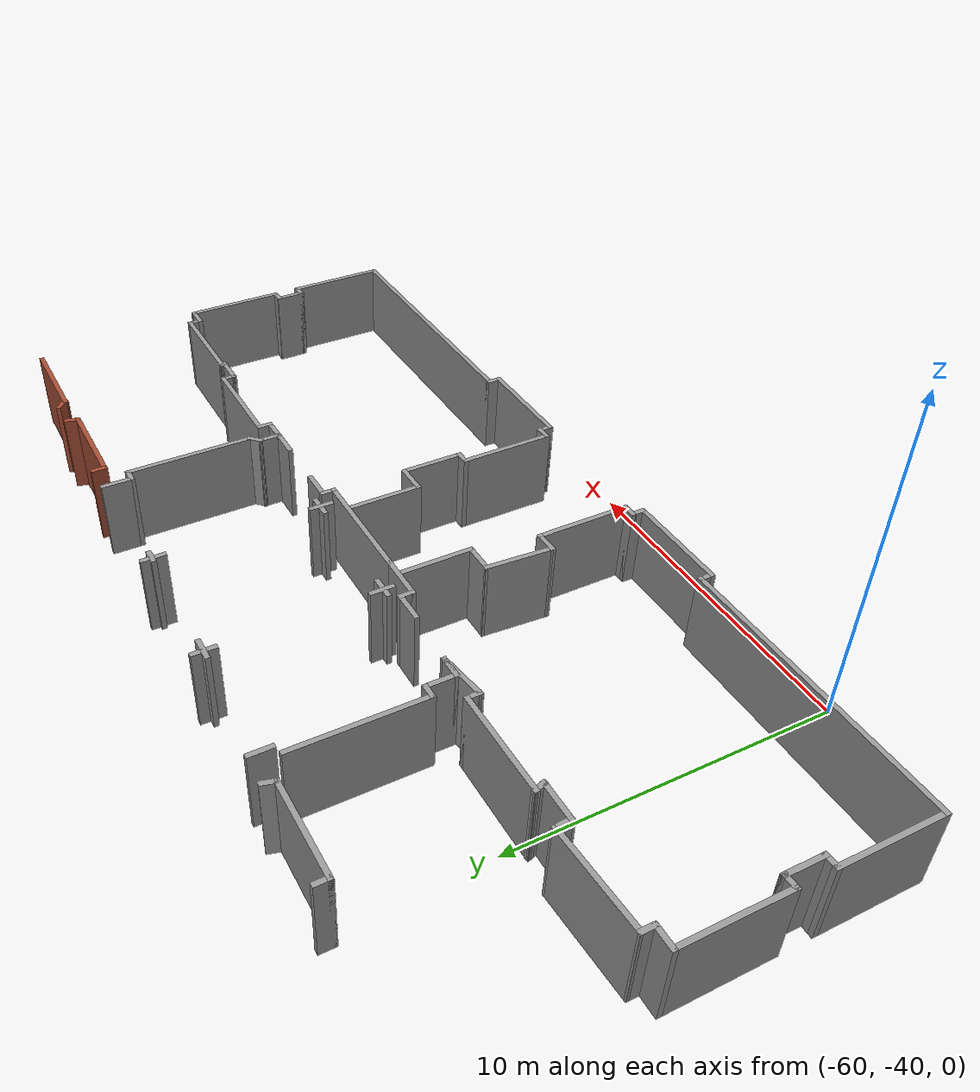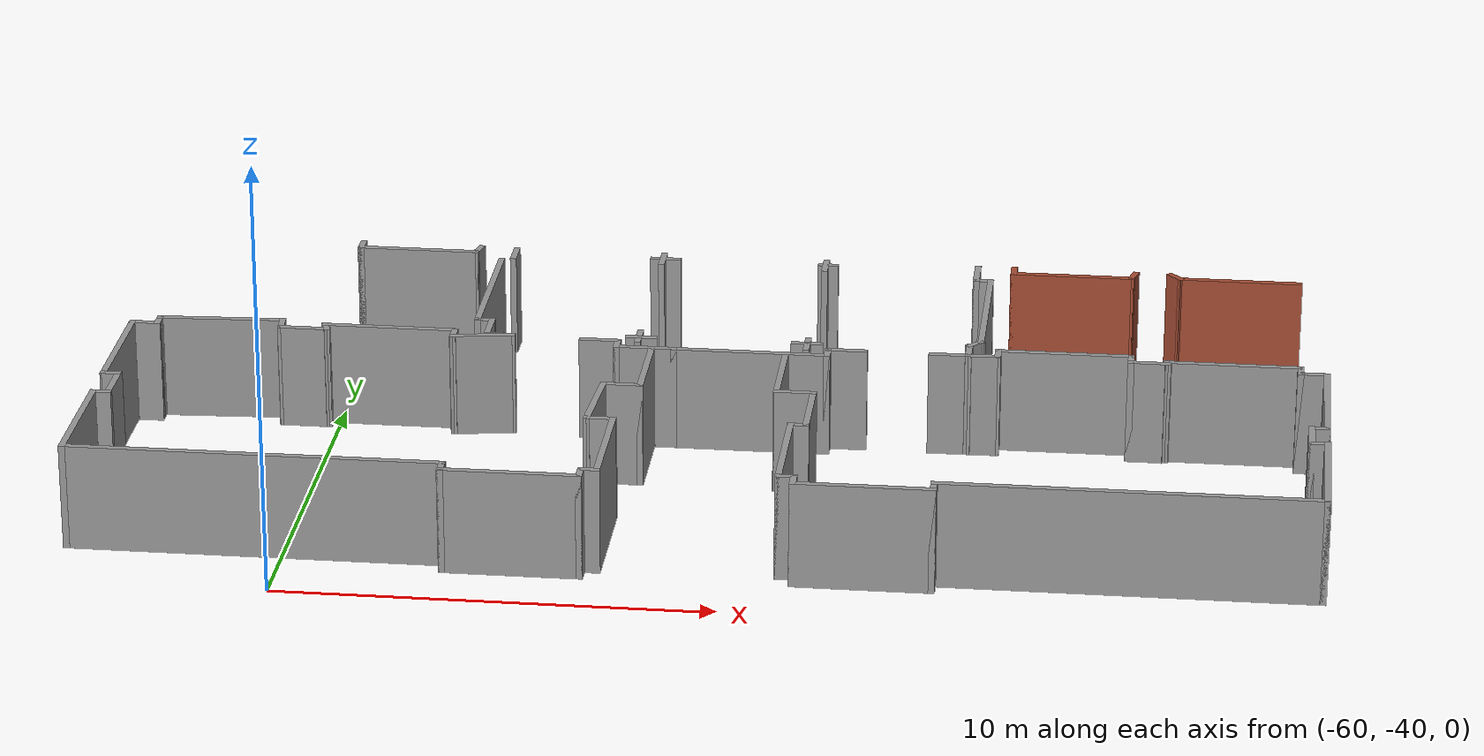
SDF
<sdf version="1.7">
 <model name="TD_1">
  <pose>-32.4963 -12.7971 0 0 -0 0</pose>
  <link name="Wall_121">
   <collision name="Wall_121_Collision">
    <geometry><box><size>0.5 0.15 2.5</size></box></geometry>
    <pose>0 0 1.25 0 -0 0</pose>
   </collision>
   <visual name="Wall_121_Visual">
    <pose>0 0 1.25 0 -0 0</pose>
    <geometry><box><size>0.5 0.15 2.5</size></box></geometry>
    <material>
     <script><uri>file://media/materials/scripts/gazebo.material</uri><name>Gazebo/Grey</name></script>
     <ambient>1 1 1 1</ambient>
    </material>
    <meta><layer>0</layer></meta>
   </visual>
   <pose>-27.8643 -12.6219 0 0 -0 -1.5708</pose>
  </link>
  <link name="Wall_122">
   <collision name="Wall_122_Collision">
    <geometry><box><size>3 0.15 2.5</size></box></geometry>
    <pose>0 0 1.25 0 -0 0</pose>
   </collision>
   <visual name="Wall_122_Visual">
    <pose>0 0 1.25 0 -0 0</pose>
    <geometry><box><size>3 0.15 2.5</size></box></geometry>
    <material>
     <script><uri>file://media/materials/scripts/gazebo.material</uri><name>Gazebo/Grey</name></script>
     <ambient>1 1 1 1</ambient>
    </material>
    <meta><layer>0</layer></meta>
   </visual>
   <pose>-26.4393 -12.7969 0 0 -0 0</pose>
  </link>
  <link name="Wall_123">
   <collision name="Wall_123_Collision">
    <geometry><box><size>0.5 0.15 2.5</size></box></geometry>
    <pose>0 0 1.25 0 -0 0</pose>
   </collision>
   <visual name="Wall_123_Visual">
    <pose>0 0 1.25 0 -0 0</pose>
    <geometry><box><size>0.5 0.15 2.5</size></box></geometry>
    <material>
     <script><uri>file://media/materials/scripts/gazebo.material</uri><name>Gazebo/Grey</name></script>
     <ambient>1 1 1 1</ambient>
    </material>
    <meta><layer>0</layer></meta>
   </visual>
   <pose>-24.969 -12.6279 0 0 -0 1.309</pose>
  </link>
  <link name="Wall_138">
   <collision name="Wall_138_Collision">
    <geometry><box><size>0.75 0.15 2.5</size></box></geometry>
    <pose>0 0 1.25 0 -0 0</pose>
   </collision>
   <visual name="Wall_138_Visual">
    <pose>0 0 1.25 0 -0 0</pose>
    <geometry><box><size>0.75 0.15 2.5</size></box></geometry>
    <material>
     <script><uri>file://media/materials/scripts/gazebo.material</uri><name>Gazebo/Grey</name></script>
     <ambient>1 1 1 1</ambient>
    </material>
    <meta><layer>0</layer></meta>
   </visual>
   <pose>-24.0418 -12.7893 0 0 -0 -1.5708</pose>
  </link>
  <link name="Wall_143">
   <collision name="Wall_143_Collision">
    <geometry><box><size>4 0.15 2.5</size></box></geometry>
    <pose>0 0 1.25 0 -0 0</pose>
   </collision>
   <visual name="Wall_143_Visual">
    <pose>0 0 1.25 0 -0 0</pose>
    <geometry><box><size>4 0.15 2.5</size></box></geometry>
    <material>
     <script><uri>file://media/materials/scripts/gazebo.material</uri><name>Gazebo/Grey</name></script>
     <ambient>1 1 1 1</ambient>
    </material>
    <meta><layer>0</layer></meta>
   </visual>
   <pose>-24.3141 -15.1704 0 0 -0 -1.5708</pose>
  </link>
  <link name="Wall_144">
   <collision name="Wall_144_Collision">
    <geometry><box><size>0.5 0.15 2.5</size></box></geometry>
    <pose>0 0 1.25 0 -0 0</pose>
   </collision>
   <visual name="Wall_144_Visual">
    <pose>0 0 1.25 0 -0 0</pose>
    <geometry><box><size>0.5 0.15 2.5</size></box></geometry>
    <material>
     <script><uri>file://media/materials/scripts/gazebo.material</uri><name>Gazebo/Grey</name></script>
     <ambient>1 1 1 1</ambient>
    </material>
    <meta><layer>0</layer></meta>
   </visual>
   <pose>-24.1391 -17.0954 0 0 -0 0</pose>
  </link>
  <link name="Wall_145">
   <collision name="Wall_145_Collision">
    <geometry><box><size>1 0.15 2.5</size></box></geometry>
    <pose>0 0 1.25 0 -0 0</pose>
   </collision>
   <visual name="Wall_145_Visual">
    <pose>0 0 1.25 0 -0 0</pose>
    <geometry><box><size>1 0.15 2.5</size></box></geometry>
    <material>
     <script><uri>file://media/materials/scripts/gazebo.material</uri><name>Gazebo/Grey</name></script>
     <ambient>1 1 1 1</ambient>
    </material>
    <meta><layer>0</layer></meta>
   </visual>
   <pose>-23.9641 -17.5204 0 0 -0 -1.5708</pose>
  </link>
  <link name="Wall_146">
   <collision name="Wall_146_Collision">
    <geometry><box><size>0.75 0.15 2.5</size></box></geometry>
    <pose>0 0 1.25 0 -0 0</pose>
   </collision>
   <visual name="Wall_146_Visual">
    <pose>0 0 1.25 0 -0 0</pose>
    <geometry><box><size>0.75 0.15 2.5</size></box></geometry>
    <material>
     <script><uri>file://media/materials/scripts/gazebo.material</uri><name>Gazebo/Grey</name></script>
     <ambient>1 1 1 1</ambient>
    </material>
    <meta><layer>0</layer></meta>
   </visual>
   <pose>-23.6641 -17.9454 0 0 -0 0</pose>
  </link>
  <link name="Wall_148">
   <collision name="Wall_148_Collision">
    <geometry><box><size>1 0.15 2.5</size></box></geometry>
    <pose>0 0 1.25 0 -0 0</pose>
   </collision>
   <visual name="Wall_148_Visual">
    <pose>0 0 1.25 0 -0 0</pose>
    <geometry><box><size>1 0.15 2.5</size></box></geometry>
    <material>
     <script><uri>file://media/materials/scripts/gazebo.material</uri><name>Gazebo/Grey</name></script>
     <ambient>1 1 1 1</ambient>
    </material>
    <meta><layer>0</layer></meta>
   </visual>
   <pose>-21.2577 -18.0243 0 0 -0 0</pose>
  </link>
  <link name="Wall_149">
   <collision name="Wall_149_Collision">
    <geometry><box><size>0.5 0.15 2.5</size></box></geometry>
    <pose>0 0 1.25 0 -0 0</pose>
   </collision>
   <visual name="Wall_149_Visual">
    <pose>0 0 1.25 0 -0 0</pose>
    <geometry><box><size>0.5 0.15 2.5</size></box></geometry>
    <material>
     <script><uri>file://media/materials/scripts/gazebo.material</uri><name>Gazebo/Grey</name></script>
     <ambient>1 1 1 1</ambient>
    </material>
    <meta><layer>0</layer></meta>
   </visual>
   <pose>-20.8327 -18.1993 0 0 -0 -1.5708</pose>
  </link>
  <link name="Wall_150">
   <collision name="Wall_150_Collision">
    <geometry><box><size>1.5 0.15 2.5</size></box></geometry>
    <pose>0 0 1.25 0 -0 0</pose>
   </collision>
   <visual name="Wall_150_Visual">
    <pose>0 0 1.25 0 -0 0</pose>
    <geometry><box><size>1.5 0.15 2.5</size></box></geometry>
    <material>
     <script><uri>file://media/materials/scripts/gazebo.material</uri><name>Gazebo/Grey</name></script>
     <ambient>1 1 1 1</ambient>
    </material>
    <meta><layer>0</layer></meta>
   </visual>
   <pose>-20.1577 -18.3743 0 0 -0 0</pose>
  </link>
  <link name="Wall_151">
   <collision name="Wall_151_Collision">
    <geometry><box><size>3.75 0.15 2.5</size></box></geometry>
    <pose>0 0 1.25 0 -0 0</pose>
   </collision>
   <visual name="Wall_151_Visual">
    <pose>0 0 1.25 0 -0 0</pose>
    <geometry><box><size>3.75 0.15 2.5</size></box></geometry>
    <material>
     <script><uri>file://media/materials/scripts/gazebo.material</uri><name>Gazebo/Grey</name></script>
     <ambient>1 1 1 1</ambient>
    </material>
    <meta><layer>0</layer></meta>
   </visual>
   <pose>-17.6827 -18.3743 0 0 -0 0</pose>
  </link>
  <link name="Wall_152">
   <collision name="Wall_152_Collision">
    <geometry><box><size>0.5 0.15 2.5</size></box></geometry>
    <pose>0 0 1.25 0 -0 0</pose>
   </collision>
   <visual name="Wall_152_Visual">
    <pose>0 0 1.25 0 -0 0</pose>
    <geometry><box><size>0.5 0.15 2.5</size></box></geometry>
    <material>
     <script><uri>file://media/materials/scripts/gazebo.material</uri><name>Gazebo/Grey</name></script>
     <ambient>1 1 1 1</ambient>
    </material>
    <meta><layer>0</layer></meta>
   </visual>
   <pose>-15.8827 -18.1993 0 0 -0 1.5708</pose>
  </link>
  <link name="Wall_153">
   <collision name="Wall_153_Collision">
    <geometry><box><size>1 0.15 2.5</size></box></geometry>
    <pose>0 0 1.25 0 -0 0</pose>
   </collision>
   <visual name="Wall_153_Visual">
    <pose>0 0 1.25 0 -0 0</pose>
    <geometry><box><size>1 0.15 2.5</size></box></geometry>
    <material>
     <script><uri>file://media/materials/scripts/gazebo.material</uri><name>Gazebo/Grey</name></script>
     <ambient>1 1 1 1</ambient>
    </material>
    <meta><layer>0</layer></meta>
   </visual>
   <pose>-15.4577 -18.0243 0 0 -0 0</pose>
  </link>
  <link name="Wall_155">
   <collision name="Wall_155_Collision">
    <geometry><box><size>1 0.15 2.5</size></box></geometry>
    <pose>0 0 1.25 0 -0 0</pose>
   </collision>
   <visual name="Wall_155_Visual">
    <pose>0 0 1.25 0 -0 0</pose>
    <geometry><box><size>1 0.15 2.5</size></box></geometry>
    <material>
     <script><uri>file://media/materials/scripts/gazebo.material</uri><name>Gazebo/Grey</name></script>
     <ambient>1 1 1 1</ambient>
    </material>
    <meta><layer>0</layer></meta>
   </visual>
   <pose>-13.0308 -18.0243 0 0 -0 0</pose>
  </link>
  <link name="Wall_156">
   <collision name="Wall_156_Collision">
    <geometry><box><size>0.75 0.15 2.5</size></box></geometry>
    <pose>0 0 1.25 0 -0 0</pose>
   </collision>
   <visual name="Wall_156_Visual">
    <pose>0 0 1.25 0 -0 0</pose>
    <geometry><box><size>0.75 0.15 2.5</size></box></geometry>
    <material>
     <script><uri>file://media/materials/scripts/gazebo.material</uri><name>Gazebo/Grey</name></script>
     <ambient>1 1 1 1</ambient>
    </material>
    <meta><layer>0</layer></meta>
   </visual>
   <pose>-12.6058 -17.7243 0 0 -0 1.5708</pose>
  </link>
  <link name="Wall_157">
   <collision name="Wall_157_Collision">
    <geometry><box><size>0.5 0.15 2.5</size></box></geometry>
    <pose>0 0 1.25 0 -0 0</pose>
   </collision>
   <visual name="Wall_157_Visual">
    <pose>0 0 1.25 0 -0 0</pose>
    <geometry><box><size>0.5 0.15 2.5</size></box></geometry>
    <material>
     <script><uri>file://media/materials/scripts/gazebo.material</uri><name>Gazebo/Grey</name></script>
     <ambient>1 1 1 1</ambient>
    </material>
    <meta><layer>0</layer></meta>
   </visual>
   <pose>-12.4821 -17.3005 0 0 -0 0.785398</pose>
  </link>
  <link name="Wall_158">
   <collision name="Wall_158_Collision">
    <geometry><box><size>4 0.15 2.5</size></box></geometry>
    <pose>0 0 1.25 0 -0 0</pose>
   </collision>
   <visual name="Wall_158_Visual">
    <pose>0 0 1.25 0 -0 0</pose>
    <geometry><box><size>4 0.15 2.5</size></box></geometry>
    <material>
     <script><uri>file://media/materials/scripts/gazebo.material</uri><name>Gazebo/Grey</name></script>
     <ambient>1 1 1 1</ambient>
    </material>
    <meta><layer>0</layer></meta>
   </visual>
   <pose>-12.3583 -15.2518 0 0 -0 1.5708</pose>
  </link>
  <link name="Wall_159">
   <collision name="Wall_159_Collision">
    <geometry><box><size>0.5 0.15 2.5</size></box></geometry>
    <pose>0 0 1.25 0 -0 0</pose>
   </collision>
   <visual name="Wall_159_Visual">
    <pose>0 0 1.25 0 -0 0</pose>
    <geometry><box><size>0.5 0.15 2.5</size></box></geometry>
    <material>
     <script><uri>file://media/materials/scripts/gazebo.material</uri><name>Gazebo/Grey</name></script>
     <ambient>1 1 1 1</ambient>
    </material>
    <meta><layer>0</layer></meta>
   </visual>
   <pose>-12.5333 -13.3268 0 0 -0 3.14159</pose>
  </link>
  <link name="Wall_160">
   <collision name="Wall_160_Collision">
    <geometry><box><size>1 0.15 2.5</size></box></geometry>
    <pose>0 0 1.25 0 -0 0</pose>
   </collision>
   <visual name="Wall_160_Visual">
    <pose>0 0 1.25 0 -0 0</pose>
    <geometry><box><size>1 0.15 2.5</size></box></geometry>
    <material>
     <script><uri>file://media/materials/scripts/gazebo.material</uri><name>Gazebo/Grey</name></script>
     <ambient>1 1 1 1</ambient>
    </material>
    <meta><layer>0</layer></meta>
   </visual>
   <pose>-12.7083 -12.9018 0 0 -0 1.5708</pose>
  </link>
  <link name="Wall_162">
   <collision name="Wall_162_Collision">
    <geometry><box><size>3.25 0.15 2.5</size></box></geometry>
    <pose>0 0 1.25 0 -0 0</pose>
   </collision>
   <visual name="Wall_162_Visual">
    <pose>0 0 1.25 0 -0 0</pose>
    <geometry><box><size>3.25 0.15 2.5</size></box></geometry>
    <material>
     <script><uri>file://media/materials/scripts/gazebo.material</uri><name>Gazebo/Grey</name></script>
     <ambient>1 1 1 1</ambient>
    </material>
    <meta><layer>0</layer></meta>
   </visual>
   <pose>-26.2939 -17.8048 0 0 -0 0</pose>
  </link>
  <link name="Wall_163">
   <collision name="Wall_163_Collision">
    <geometry><box><size>0.5 0.15 2.5</size></box></geometry>
    <pose>0 0 1.25 0 -0 0</pose>
   </collision>
   <visual name="Wall_163_Visual">
    <pose>0 0 1.25 0 -0 0</pose>
    <geometry><box><size>0.5 0.15 2.5</size></box></geometry>
    <material>
     <script><uri>file://media/materials/scripts/gazebo.material</uri><name>Gazebo/Grey</name></script>
     <ambient>1 1 1 1</ambient>
    </material>
    <meta><layer>0</layer></meta>
   </visual>
   <pose>-24.7439 -17.9798 0 0 -0 -1.5708</pose>
  </link>
  <link name="Wall_164">
   <collision name="Wall_164_Collision">
    <geometry><box><size>1.5456 0.15 2.5</size></box></geometry>
    <pose>0 0 1.25 0 -0 0</pose>
   </collision>
   <visual name="Wall_164_Visual">
    <pose>0 0 1.25 0 -0 0</pose>
    <geometry><box><size>1.5456 0.15 2.5</size></box></geometry>
    <material>
     <script><uri>file://media/materials/scripts/gazebo.material</uri><name>Gazebo/Grey</name></script>
     <ambient>1 1 1 1</ambient>
    </material>
    <meta><layer>0</layer></meta>
   </visual>
   <pose>-24.054 -18.0501 0 0 -0 0.150582</pose>
  </link>
  <link name="Wall_166">
   <collision name="Wall_166_Collision">
    <geometry><box><size>1.25 0.15 2.5</size></box></geometry>
    <pose>0 0 1.25 0 -0 0</pose>
   </collision>
   <visual name="Wall_166_Visual">
    <pose>0 0 1.25 0 -0 0</pose>
    <geometry><box><size>1.25 0.15 2.5</size></box></geometry>
    <material>
     <script><uri>file://media/materials/scripts/gazebo.material</uri><name>Gazebo/Grey</name></script>
     <ambient>1 1 1 1</ambient>
    </material>
    <meta><layer>0</layer></meta>
   </visual>
   <pose>-28.3142 -18.0728 0 0 -0 0</pose>
  </link>
  <link name="Wall_167">
   <collision name="Wall_167_Collision">
    <geometry><box><size>0.429643 0.15 2.5</size></box></geometry>
    <pose>0 0 1.25 0 -0 0</pose>
   </collision>
   <visual name="Wall_167_Visual">
    <pose>0 0 1.25 0 -0 0</pose>
    <geometry><box><size>0.429643 0.15 2.5</size></box></geometry>
    <material>
     <script><uri>file://media/materials/scripts/gazebo.material</uri><name>Gazebo/Grey</name></script>
     <ambient>1 1 1 1</ambient>
    </material>
    <meta><layer>0</layer></meta>
   </visual>
   <pose>-27.804 -17.9388 0 0 -0 1.85983</pose>
  </link>
  <link name="Wall_169">
   <collision name="Wall_169_Collision">
    <geometry><box><size>0.583709 0.15 2.5</size></box></geometry>
    <pose>0 0 1.25 0 -0 0</pose>
   </collision>
   <visual name="Wall_169_Visual">
    <pose>0 0 1.25 0 -0 0</pose>
    <geometry><box><size>0.583709 0.15 2.5</size></box></geometry>
    <material>
     <script><uri>file://media/materials/scripts/gazebo.material</uri><name>Gazebo/Grey</name></script>
     <ambient>1 1 1 1</ambient>
    </material>
    <meta><layer>0</layer></meta>
   </visual>
   <pose>-28.8814 -17.8567 0 0 -0 -1.49097</pose>
  </link>
  <link name="Wall_171">
   <collision name="Wall_171_Collision">
    <geometry><box><size>3.07623 0.15 2.5</size></box></geometry>
    <pose>0 0 1.25 0 -0 0</pose>
   </collision>
   <visual name="Wall_171_Visual">
    <pose>0 0 1.25 0 -0 0</pose>
    <geometry><box><size>3.07623 0.15 2.5</size></box></geometry>
    <material>
     <script><uri>file://media/materials/scripts/gazebo.material</uri><name>Gazebo/Grey</name></script>
     <ambient>1 1 1 1</ambient>
    </material>
    <meta><layer>0</layer></meta>
   </visual>
   <pose>-30.36 -17.714 0 0 -0 0.050254</pose>
  </link>
  <link name="Wall_173">
   <collision name="Wall_173_Collision">
    <geometry><box><size>0.5 0.15 2.5</size></box></geometry>
    <pose>0 0 1.25 0 -0 0</pose>
   </collision>
   <visual name="Wall_173_Visual">
    <pose>0 0 1.25 0 -0 0</pose>
    <geometry><box><size>0.5 0.15 2.5</size></box></geometry>
    <material>
     <script><uri>file://media/materials/scripts/gazebo.material</uri><name>Gazebo/Grey</name></script>
     <ambient>1 1 1 1</ambient>
    </material>
    <meta><layer>0</layer></meta>
   </visual>
   <pose>-31.8213 -17.9625 0 0 -0 -1.5708</pose>
  </link>
  <link name="Wall_174">
   <collision name="Wall_174_Collision">
    <geometry><box><size>0.75 0.15 2.5</size></box></geometry>
    <pose>0 0 1.25 0 -0 0</pose>
   </collision>
   <visual name="Wall_174_Visual">
    <pose>0 0 1.25 0 -0 0</pose>
    <geometry><box><size>0.75 0.15 2.5</size></box></geometry>
    <material>
     <script><uri>file://media/materials/scripts/gazebo.material</uri><name>Gazebo/Grey</name></script>
     <ambient>1 1 1 1</ambient>
    </material>
    <meta><layer>0</layer></meta>
   </visual>
   <pose>-32.1213 -18.1375 0 0 -0 3.14159</pose>
  </link>
  <link name="Wall_176">
   <collision name="Wall_176_Collision">
    <geometry><box><size>3.25 0.15 2.5</size></box></geometry>
    <pose>0 0 1.25 0 -0 0</pose>
   </collision>
   <visual name="Wall_176_Visual">
    <pose>0 0 1.25 0 -0 0</pose>
    <geometry><box><size>3.25 0.15 2.5</size></box></geometry>
    <material>
     <script><uri>file://media/materials/scripts/gazebo.material</uri><name>Gazebo/Grey</name></script>
     <ambient>1 1 1 1</ambient>
    </material>
    <meta><layer>0</layer></meta>
   </visual>
   <pose>-32.4213 -19.6875 0 0 -0 -1.5708</pose>
  </link>
  <link name="Wall_177">
   <collision name="Wall_177_Collision">
    <geometry><box><size>0.5 0.15 2.5</size></box></geometry>
    <pose>0 0 1.25 0 -0 0</pose>
   </collision>
   <visual name="Wall_177_Visual">
    <pose>0 0 1.25 0 -0 0</pose>
    <geometry><box><size>0.5 0.15 2.5</size></box></geometry>
    <material>
     <script><uri>file://media/materials/scripts/gazebo.material</uri><name>Gazebo/Grey</name></script>
     <ambient>1 1 1 1</ambient>
    </material>
    <meta><layer>0</layer></meta>
   </visual>
   <pose>-32.2463 -21.2375 0 0 -0 0</pose>
  </link>
  <link name="Wall_178">
   <collision name="Wall_178_Collision">
    <geometry><box><size>1.25 0.15 2.5</size></box></geometry>
    <pose>0 0 1.25 0 -0 0</pose>
   </collision>
   <visual name="Wall_178_Visual">
    <pose>0 0 1.25 0 -0 0</pose>
    <geometry><box><size>1.25 0.15 2.5</size></box></geometry>
    <material>
     <script><uri>file://media/materials/scripts/gazebo.material</uri><name>Gazebo/Grey</name></script>
     <ambient>1 1 1 1</ambient>
    </material>
    <meta><layer>0</layer></meta>
   </visual>
   <pose>-32.0713 -21.7875 0 0 -0 -1.5708</pose>
  </link>
  <link name="Wall_179">
   <collision name="Wall_179_Collision">
    <geometry><box><size>0.5 0.15 2.5</size></box></geometry>
    <pose>0 0 1.25 0 -0 0</pose>
   </collision>
   <visual name="Wall_179_Visual">
    <pose>0 0 1.25 0 -0 0</pose>
    <geometry><box><size>0.5 0.15 2.5</size></box></geometry>
    <material>
     <script><uri>file://media/materials/scripts/gazebo.material</uri><name>Gazebo/Grey</name></script>
     <ambient>1 1 1 1</ambient>
    </material>
    <meta><layer>0</layer></meta>
   </visual>
   <pose>-32.2463 -22.3375 0 0 -0 3.14159</pose>
  </link>
  <link name="Wall_181">
   <collision name="Wall_181_Collision">
    <geometry><box><size>3.25 0.15 2.5</size></box></geometry>
    <pose>0 0 1.25 0 -0 0</pose>
   </collision>
   <visual name="Wall_181_Visual">
    <pose>0 0 1.25 0 -0 0</pose>
    <geometry><box><size>3.25 0.15 2.5</size></box></geometry>
    <material>
     <script><uri>file://media/materials/scripts/gazebo.material</uri><name>Gazebo/Grey</name></script>
     <ambient>1 1 1 1</ambient>
    </material>
    <meta><layer>0</layer></meta>
   </visual>
   <pose>-32.4213 -23.8875 0 0 -0 -1.5708</pose>
  </link>
  <link name="Wall_182">
   <collision name="Wall_182_Collision">
    <geometry><box><size>8.75 0.15 2.5</size></box></geometry>
    <pose>0 0 1.25 0 -0 0</pose>
   </collision>
   <visual name="Wall_182_Visual">
    <pose>0 0 1.25 0 -0 0</pose>
    <geometry><box><size>8.75 0.15 2.5</size></box></geometry>
    <material>
     <script><uri>file://media/materials/scripts/gazebo.material</uri><name>Gazebo/Grey</name></script>
     <ambient>1 1 1 1</ambient>
    </material>
    <meta><layer>0</layer></meta>
   </visual>
   <pose>-28.1213 -25.4375 0 0 -0 0</pose>
  </link>
  <link name="Wall_183">
   <collision name="Wall_183_Collision">
    <geometry><box><size>0.5 0.15 2.5</size></box></geometry>
    <pose>0 0 1.25 0 -0 0</pose>
   </collision>
   <visual name="Wall_183_Visual">
    <pose>0 0 1.25 0 -0 0</pose>
    <geometry><box><size>0.5 0.15 2.5</size></box></geometry>
    <material>
     <script><uri>file://media/materials/scripts/gazebo.material</uri><name>Gazebo/Grey</name></script>
     <ambient>1 1 1 1</ambient>
    </material>
    <meta><layer>0</layer></meta>
   </visual>
   <pose>-23.8213 -25.6125 0 0 -0 -1.5708</pose>
  </link>
  <link name="Wall_184">
   <collision name="Wall_184_Collision">
    <geometry><box><size>3.25 0.15 2.5</size></box></geometry>
    <pose>0 0 1.25 0 -0 0</pose>
   </collision>
   <visual name="Wall_184_Visual">
    <pose>0 0 1.25 0 -0 0</pose>
    <geometry><box><size>3.25 0.15 2.5</size></box></geometry>
    <material>
     <script><uri>file://media/materials/scripts/gazebo.material</uri><name>Gazebo/Grey</name></script>
     <ambient>1 1 1 1</ambient>
    </material>
    <meta><layer>0</layer></meta>
   </visual>
   <pose>-22.2713 -25.7875 0 0 -0 0</pose>
  </link>
  <link name="Wall_185">
   <collision name="Wall_185_Collision">
    <geometry><box><size>0.5 0.15 2.5</size></box></geometry>
    <pose>0 0 1.25 0 -0 0</pose>
   </collision>
   <visual name="Wall_185_Visual">
    <pose>0 0 1.25 0 -0 0</pose>
    <geometry><box><size>0.5 0.15 2.5</size></box></geometry>
    <material>
     <script><uri>file://media/materials/scripts/gazebo.material</uri><name>Gazebo/Grey</name></script>
     <ambient>1 1 1 1</ambient>
    </material>
    <meta><layer>0</layer></meta>
   </visual>
   <pose>-20.7213 -25.6125 0 0 -0 1.5708</pose>
  </link>
  <link name="Wall_186">
   <collision name="Wall_186_Collision">
    <geometry><box><size>0.5 0.15 2.5</size></box></geometry>
    <pose>0 0 1.25 0 -0 0</pose>
   </collision>
   <visual name="Wall_186_Visual">
    <pose>0 0 1.25 0 -0 0</pose>
    <geometry><box><size>0.5 0.15 2.5</size></box></geometry>
    <material>
     <script><uri>file://media/materials/scripts/gazebo.material</uri><name>Gazebo/Grey</name></script>
     <ambient>1 1 1 1</ambient>
    </material>
    <meta><layer>0</layer></meta>
   </visual>
   <pose>-20.5463 -25.4375 0 0 -0 0</pose>
  </link>
  <link name="Wall_187">
   <collision name="Wall_187_Collision">
    <geometry><box><size>3 0.15 2.5</size></box></geometry>
    <pose>0 0 1.25 0 -0 0</pose>
   </collision>
   <visual name="Wall_187_Visual">
    <pose>0 0 1.25 0 -0 0</pose>
    <geometry><box><size>3 0.15 2.5</size></box></geometry>
    <material>
     <script><uri>file://media/materials/scripts/gazebo.material</uri><name>Gazebo/Grey</name></script>
     <ambient>1 1 1 1</ambient>
    </material>
    <meta><layer>0</layer></meta>
   </visual>
   <pose>-20.3713 -24.0125 0 0 -0 1.5708</pose>
  </link>
  <link name="Wall_188">
   <collision name="Wall_188_Collision">
    <geometry><box><size>0.75 0.15 2.5</size></box></geometry>
    <pose>0 0 1.25 0 -0 0</pose>
   </collision>
   <visual name="Wall_188_Visual">
    <pose>0 0 1.25 0 -0 0</pose>
    <geometry><box><size>0.75 0.15 2.5</size></box></geometry>
    <material>
     <script><uri>file://media/materials/scripts/gazebo.material</uri><name>Gazebo/Grey</name></script>
     <ambient>1 1 1 1</ambient>
    </material>
    <meta><layer>0</layer></meta>
   </visual>
   <pose>-20.6713 -22.5875 0 0 -0 3.14159</pose>
  </link>
  <link name="Wall_190">
   <collision name="Wall_190_Collision">
    <geometry><box><size>2.14035 0.15 2.5</size></box></geometry>
    <pose>0 0 1.25 0 -0 0</pose>
   </collision>
   <visual name="Wall_190_Visual">
    <pose>0 0 1.25 0 -0 0</pose>
    <geometry><box><size>2.14035 0.15 2.5</size></box></geometry>
    <material>
     <script><uri>file://media/materials/scripts/gazebo.material</uri><name>Gazebo/Grey</name></script>
     <ambient>1 1 1 1</ambient>
    </material>
    <meta><layer>0</layer></meta>
   </visual>
   <pose>-20.9095 -21.5943 0 0 -0 -1.63295</pose>
  </link>
  <link name="Wall_192">
   <collision name="Wall_192_Collision">
    <geometry><box><size>1 0.15 2.5</size></box></geometry>
    <pose>0 0 1.25 0 -0 0</pose>
   </collision>
   <visual name="Wall_192_Visual">
    <pose>0 0 1.25 0 -0 0</pose>
    <geometry><box><size>1 0.15 2.5</size></box></geometry>
    <material>
     <script><uri>file://media/materials/scripts/gazebo.material</uri><name>Gazebo/Grey</name></script>
     <ambient>1 1 1 1</ambient>
    </material>
    <meta><layer>0</layer></meta>
   </visual>
   <pose>-20.4227 -20.601 0 0 -0 0</pose>
  </link>
  <link name="Wall_193">
   <collision name="Wall_193_Collision">
    <geometry><box><size>2.25 0.15 2.5</size></box></geometry>
    <pose>0 0 1.25 0 -0 0</pose>
   </collision>
   <visual name="Wall_193_Visual">
    <pose>0 0 1.25 0 -0 0</pose>
    <geometry><box><size>2.25 0.15 2.5</size></box></geometry>
    <material>
     <script><uri>file://media/materials/scripts/gazebo.material</uri><name>Gazebo/Grey</name></script>
     <ambient>1 1 1 1</ambient>
    </material>
    <meta><layer>0</layer></meta>
   </visual>
   <pose>-19.9977 -19.551 0 0 -0 1.5708</pose>
  </link>
  <link name="Wall_195">
   <collision name="Wall_195_Collision">
    <geometry><box><size>2.25 0.15 2.5</size></box></geometry>
    <pose>0 0 1.25 0 -0 0</pose>
   </collision>
   <visual name="Wall_195_Visual">
    <pose>0 0 1.25 0 -0 0</pose>
    <geometry><box><size>2.25 0.15 2.5</size></box></geometry>
    <material>
     <script><uri>file://media/materials/scripts/gazebo.material</uri><name>Gazebo/Grey</name></script>
     <ambient>1 1 1 1</ambient>
    </material>
    <meta><layer>0</layer></meta>
   </visual>
   <pose>-16.8477 -19.564 0 0 -0 -1.5708</pose>
  </link>
  <link name="Wall_196">
   <collision name="Wall_196_Collision">
    <geometry><box><size>1 0.15 2.5</size></box></geometry>
    <pose>0 0 1.25 0 -0 0</pose>
   </collision>
   <visual name="Wall_196_Visual">
    <pose>0 0 1.25 0 -0 0</pose>
    <geometry><box><size>1 0.15 2.5</size></box></geometry>
    <material>
     <script><uri>file://media/materials/scripts/gazebo.material</uri><name>Gazebo/Grey</name></script>
     <ambient>1 1 1 1</ambient>
    </material>
    <meta><layer>0</layer></meta>
   </visual>
   <pose>-16.4227 -20.614 0 0 -0 0</pose>
  </link>
  <link name="Wall_197">
   <collision name="Wall_197_Collision">
    <geometry><box><size>2 0.15 2.5</size></box></geometry>
    <pose>0 0 1.25 0 -0 0</pose>
   </collision>
   <visual name="Wall_197_Visual">
    <pose>0 0 1.25 0 -0 0</pose>
    <geometry><box><size>2 0.15 2.5</size></box></geometry>
    <material>
     <script><uri>file://media/materials/scripts/gazebo.material</uri><name>Gazebo/Grey</name></script>
     <ambient>1 1 1 1</ambient>
    </material>
    <meta><layer>0</layer></meta>
   </visual>
   <pose>-15.9977 -21.539 0 0 -0 -1.5708</pose>
  </link>
  <link name="Wall_198">
   <collision name="Wall_198_Collision">
    <geometry><box><size>0.5 0.15 2.5</size></box></geometry>
    <pose>0 0 1.25 0 -0 0</pose>
   </collision>
   <visual name="Wall_198_Visual">
    <pose>0 0 1.25 0 -0 0</pose>
    <geometry><box><size>0.5 0.15 2.5</size></box></geometry>
    <material>
     <script><uri>file://media/materials/scripts/gazebo.material</uri><name>Gazebo/Grey</name></script>
     <ambient>1 1 1 1</ambient>
    </material>
    <meta><layer>0</layer></meta>
   </visual>
   <pose>-16.1727 -22.464 0 0 -0 3.14159</pose>
  </link>
  <link name="Wall_200">
   <collision name="Wall_200_Collision">
    <geometry><box><size>3 0.15 2.5</size></box></geometry>
    <pose>0 0 1.25 0 -0 0</pose>
   </collision>
   <visual name="Wall_200_Visual">
    <pose>0 0 1.25 0 -0 0</pose>
    <geometry><box><size>3 0.15 2.5</size></box></geometry>
    <material>
     <script><uri>file://media/materials/scripts/gazebo.material</uri><name>Gazebo/Grey</name></script>
     <ambient>1 1 1 1</ambient>
    </material>
    <meta><layer>0</layer></meta>
   </visual>
   <pose>-16.3477 -23.889 0 0 -0 -1.5708</pose>
  </link>
  <link name="Wall_201">
   <collision name="Wall_201_Collision">
    <geometry><box><size>0.5 0.15 2.5</size></box></geometry>
    <pose>0 0 1.25 0 -0 0</pose>
   </collision>
   <visual name="Wall_201_Visual">
    <pose>0 0 1.25 0 -0 0</pose>
    <geometry><box><size>0.5 0.15 2.5</size></box></geometry>
    <material>
     <script><uri>file://media/materials/scripts/gazebo.material</uri><name>Gazebo/Grey</name></script>
     <ambient>1 1 1 1</ambient>
    </material>
    <meta><layer>0</layer></meta>
   </visual>
   <pose>-16.1727 -25.314 0 0 -0 0</pose>
  </link>
  <link name="Wall_202">
   <collision name="Wall_202_Collision">
    <geometry><box><size>0.5 0.15 2.5</size></box></geometry>
    <pose>0 0 1.25 0 -0 0</pose>
   </collision>
   <visual name="Wall_202_Visual">
    <pose>0 0 1.25 0 -0 0</pose>
    <geometry><box><size>0.5 0.15 2.5</size></box></geometry>
    <material>
     <script><uri>file://media/materials/scripts/gazebo.material</uri><name>Gazebo/Grey</name></script>
     <ambient>1 1 1 1</ambient>
    </material>
    <meta><layer>0</layer></meta>
   </visual>
   <pose>-15.9977 -25.489 0 0 -0 -1.5708</pose>
  </link>
  <link name="Wall_203">
   <collision name="Wall_203_Collision">
    <geometry><box><size>3.25 0.15 2.5</size></box></geometry>
    <pose>0 0 1.25 0 -0 0</pose>
   </collision>
   <visual name="Wall_203_Visual">
    <pose>0 0 1.25 0 -0 0</pose>
    <geometry><box><size>3.25 0.15 2.5</size></box></geometry>
    <material>
     <script><uri>file://media/materials/scripts/gazebo.material</uri><name>Gazebo/Grey</name></script>
     <ambient>1 1 1 1</ambient>
    </material>
    <meta><layer>0</layer></meta>
   </visual>
   <pose>-14.4477 -25.664 0 0 -0 0</pose>
  </link>
  <link name="Wall_204">
   <collision name="Wall_204_Collision">
    <geometry><box><size>0.5 0.15 2.5</size></box></geometry>
    <pose>0 0 1.25 0 -0 0</pose>
   </collision>
   <visual name="Wall_204_Visual">
    <pose>0 0 1.25 0 -0 0</pose>
    <geometry><box><size>0.5 0.15 2.5</size></box></geometry>
    <material>
     <script><uri>file://media/materials/scripts/gazebo.material</uri><name>Gazebo/Grey</name></script>
     <ambient>1 1 1 1</ambient>
    </material>
    <meta><layer>0</layer></meta>
   </visual>
   <pose>-12.8977 -25.489 0 0 -0 1.5708</pose>
  </link>
  <link name="Wall_205">
   <collision name="Wall_205_Collision">
    <geometry><box><size>8.75 0.15 2.5</size></box></geometry>
    <pose>0 0 1.25 0 -0 0</pose>
   </collision>
   <visual name="Wall_205_Visual">
    <pose>0 0 1.25 0 -0 0</pose>
    <geometry><box><size>8.75 0.15 2.5</size></box></geometry>
    <material>
     <script><uri>file://media/materials/scripts/gazebo.material</uri><name>Gazebo/Grey</name></script>
     <ambient>1 1 1 1</ambient>
    </material>
    <meta><layer>0</layer></meta>
   </visual>
   <pose>-8.59765 -25.314 0 0 -0 0</pose>
  </link>
  <link name="Wall_206">
   <collision name="Wall_206_Collision">
    <geometry><box><size>3.25 0.15 2.5</size></box></geometry>
    <pose>0 0 1.25 0 -0 0</pose>
   </collision>
   <visual name="Wall_206_Visual">
    <pose>0 0 1.25 0 -0 0</pose>
    <geometry><box><size>3.25 0.15 2.5</size></box></geometry>
    <material>
     <script><uri>file://media/materials/scripts/gazebo.material</uri><name>Gazebo/Grey</name></script>
     <ambient>1 1 1 1</ambient>
    </material>
    <meta><layer>0</layer></meta>
   </visual>
   <pose>-4.29765 -23.764 0 0 -0 1.5708</pose>
  </link>
  <link name="Wall_207">
   <collision name="Wall_207_Collision">
    <geometry><box><size>0.5 0.15 2.5</size></box></geometry>
    <pose>0 0 1.25 0 -0 0</pose>
   </collision>
   <visual name="Wall_207_Visual">
    <pose>0 0 1.25 0 -0 0</pose>
    <geometry><box><size>0.5 0.15 2.5</size></box></geometry>
    <material>
     <script><uri>file://media/materials/scripts/gazebo.material</uri><name>Gazebo/Grey</name></script>
     <ambient>1 1 1 1</ambient>
    </material>
    <meta><layer>0</layer></meta>
   </visual>
   <pose>-4.47265 -22.214 0 0 -0 3.14159</pose>
  </link>
  <link name="Wall_208">
   <collision name="Wall_208_Collision">
    <geometry><box><size>1 0.15 2.5</size></box></geometry>
    <pose>0 0 1.25 0 -0 0</pose>
   </collision>
   <visual name="Wall_208_Visual">
    <pose>0 0 1.25 0 -0 0</pose>
    <geometry><box><size>1 0.15 2.5</size></box></geometry>
    <material>
     <script><uri>file://media/materials/scripts/gazebo.material</uri><name>Gazebo/Grey</name></script>
     <ambient>1 1 1 1</ambient>
    </material>
    <meta><layer>0</layer></meta>
   </visual>
   <pose>-4.64765 -21.789 0 0 -0 1.5708</pose>
  </link>
  <link name="Wall_209">
   <collision name="Wall_209_Collision">
    <geometry><box><size>0.5 0.15 2.5</size></box></geometry>
    <pose>0 0 1.25 0 -0 0</pose>
   </collision>
   <visual name="Wall_209_Visual">
    <pose>0 0 1.25 0 -0 0</pose>
    <geometry><box><size>0.5 0.15 2.5</size></box></geometry>
    <material>
     <script><uri>file://media/materials/scripts/gazebo.material</uri><name>Gazebo/Grey</name></script>
     <ambient>1 1 1 1</ambient>
    </material>
    <meta><layer>0</layer></meta>
   </visual>
   <pose>-4.47265 -21.364 0 0 -0 0</pose>
  </link>
  <link name="Wall_211">
   <collision name="Wall_211_Collision">
    <geometry><box><size>3.25 0.15 2.5</size></box></geometry>
    <pose>0 0 1.25 0 -0 0</pose>
   </collision>
   <visual name="Wall_211_Visual">
    <pose>0 0 1.25 0 -0 0</pose>
    <geometry><box><size>3.25 0.15 2.5</size></box></geometry>
    <material>
     <script><uri>file://media/materials/scripts/gazebo.material</uri><name>Gazebo/Grey</name></script>
     <ambient>1 1 1 1</ambient>
    </material>
    <meta><layer>0</layer></meta>
   </visual>
   <pose>-4.29765 -19.814 0 0 -0 1.5708</pose>
  </link>
  <link name="Wall_212">
   <collision name="Wall_212_Collision">
    <geometry><box><size>0.75 0.15 2.5</size></box></geometry>
    <pose>0 0 1.25 0 -0 0</pose>
   </collision>
   <visual name="Wall_212_Visual">
    <pose>0 0 1.25 0 -0 0</pose>
    <geometry><box><size>0.75 0.15 2.5</size></box></geometry>
    <material>
     <script><uri>file://media/materials/scripts/gazebo.material</uri><name>Gazebo/Grey</name></script>
     <ambient>1 1 1 1</ambient>
    </material>
    <meta><layer>0</layer></meta>
   </visual>
   <pose>-4.59765 -18.264 0 0 -0 3.14159</pose>
  </link>
  <link name="Wall_213">
   <collision name="Wall_213_Collision">
    <geometry><box><size>0.5 0.15 2.5</size></box></geometry>
    <pose>0 0 1.25 0 -0 0</pose>
   </collision>
   <visual name="Wall_213_Visual">
    <pose>0 0 1.25 0 -0 0</pose>
    <geometry><box><size>0.5 0.15 2.5</size></box></geometry>
    <material>
     <script><uri>file://media/materials/scripts/gazebo.material</uri><name>Gazebo/Grey</name></script>
     <ambient>1 1 1 1</ambient>
    </material>
    <meta><layer>0</layer></meta>
   </visual>
   <pose>-4.89765 -18.089 0 0 -0 1.5708</pose>
  </link>
  <link name="Wall_214">
   <collision name="Wall_214_Collision">
    <geometry><box><size>3.25 0.15 2.5</size></box></geometry>
    <pose>0 0 1.25 0 -0 0</pose>
   </collision>
   <visual name="Wall_214_Visual">
    <pose>0 0 1.25 0 -0 0</pose>
    <geometry><box><size>3.25 0.15 2.5</size></box></geometry>
    <material>
     <script><uri>file://media/materials/scripts/gazebo.material</uri><name>Gazebo/Grey</name></script>
     <ambient>1 1 1 1</ambient>
    </material>
    <meta><layer>0</layer></meta>
   </visual>
   <pose>-6.44765 -17.914 0 0 -0 3.14159</pose>
  </link>
  <link name="Wall_215">
   <collision name="Wall_215_Collision">
    <geometry><box><size>0.25 0.15 2.5</size></box></geometry>
    <pose>0 0 1.25 0 -0 0</pose>
   </collision>
   <visual name="Wall_215_Visual">
    <pose>0 0 1.25 0 -0 0</pose>
    <geometry><box><size>0.25 0.15 2.5</size></box></geometry>
    <material>
     <script><uri>file://media/materials/scripts/gazebo.material</uri><name>Gazebo/Grey</name></script>
     <ambient>1 1 1 1</ambient>
    </material>
    <meta><layer>0</layer></meta>
   </visual>
   <pose>-7.98471 -17.9623 0 0 -0 -1.309</pose>
  </link>
  <link name="Wall_216">
   <collision name="Wall_216_Collision">
    <geometry><box><size>1 0.15 2.5</size></box></geometry>
    <pose>0 0 1.25 0 -0 0</pose>
   </collision>
   <visual name="Wall_216_Visual">
    <pose>0 0 1.25 0 -0 0</pose>
    <geometry><box><size>1 0.15 2.5</size></box></geometry>
    <material>
     <script><uri>file://media/materials/scripts/gazebo.material</uri><name>Gazebo/Grey</name></script>
     <ambient>1 1 1 1</ambient>
    </material>
    <meta><layer>0</layer></meta>
   </visual>
   <pose>-8.39677 -18.0106 0 0 -0 3.14159</pose>
  </link>
  <link name="Wall_217">
   <collision name="Wall_217_Collision">
    <geometry><box><size>0.5 0.15 2.5</size></box></geometry>
    <pose>0 0 1.25 0 -0 0</pose>
   </collision>
   <visual name="Wall_217_Visual">
    <pose>0 0 1.25 0 -0 0</pose>
    <geometry><box><size>0.5 0.15 2.5</size></box></geometry>
    <material>
     <script><uri>file://media/materials/scripts/gazebo.material</uri><name>Gazebo/Grey</name></script>
     <ambient>1 1 1 1</ambient>
    </material>
    <meta><layer>0</layer></meta>
   </visual>
   <pose>-8.82177 -17.8356 0 0 -0 1.5708</pose>
  </link>
  <link name="Wall_218">
   <collision name="Wall_218_Collision">
    <geometry><box><size>3.25 0.15 2.5</size></box></geometry>
    <pose>0 0 1.25 0 -0 0</pose>
   </collision>
   <visual name="Wall_218_Visual">
    <pose>0 0 1.25 0 -0 0</pose>
    <geometry><box><size>3.25 0.15 2.5</size></box></geometry>
    <material>
     <script><uri>file://media/materials/scripts/gazebo.material</uri><name>Gazebo/Grey</name></script>
     <ambient>1 1 1 1</ambient>
    </material>
    <meta><layer>0</layer></meta>
   </visual>
   <pose>-10.3718 -17.6606 0 0 -0 3.14159</pose>
  </link>
  <link name="Wall_219">
   <collision name="Wall_219_Collision">
    <geometry><box><size>0.5 0.15 2.5</size></box></geometry>
    <pose>0 0 1.25 0 -0 0</pose>
   </collision>
   <visual name="Wall_219_Visual">
    <pose>0 0 1.25 0 -0 0</pose>
    <geometry><box><size>0.5 0.15 2.5</size></box></geometry>
    <material>
     <script><uri>file://media/materials/scripts/gazebo.material</uri><name>Gazebo/Grey</name></script>
     <ambient>1 1 1 1</ambient>
    </material>
    <meta><layer>0</layer></meta>
   </visual>
   <pose>-11.9218 -17.8356 0 0 -0 -1.5708</pose>
  </link>
  <link name="Wall_220">
   <collision name="Wall_220_Collision">
    <geometry><box><size>0.834194 0.15 2.5</size></box></geometry>
    <pose>0 0 1.25 0 -0 0</pose>
   </collision>
   <visual name="Wall_220_Visual">
    <pose>0 0 1.25 0 -0 0</pose>
    <geometry><box><size>0.834194 0.15 2.5</size></box></geometry>
    <material>
     <script><uri>file://media/materials/scripts/gazebo.material</uri><name>Gazebo/Grey</name></script>
     <ambient>1 1 1 1</ambient>
    </material>
    <meta><layer>0</layer></meta>
   </visual>
   <pose>-12.2638 -18.0175 0 0 -0 -3.12166</pose>
  </link>
  <link name="Wall_239">
   <collision name="Wall_239_Collision">
    <geometry><box><size>0.5 0.15 2.5</size></box></geometry>
    <pose>0 0 1.25 0 -0 0</pose>
   </collision>
   <visual name="Wall_239_Visual">
    <pose>0 0 1.25 0 -0 0</pose>
    <geometry><box><size>0.5 0.15 2.5</size></box></geometry>
    <material>
     <script><uri>file://media/materials/scripts/gazebo.material</uri><name>Gazebo/Grey</name></script>
     <ambient>1 1 1 1</ambient>
    </material>
    <meta><layer>0</layer></meta>
   </visual>
   <pose>-16.3474 -12.7269 0 0 -0 3.14159</pose>
  </link>
  <link name="Wall_241">
   <collision name="Wall_241_Collision">
    <geometry><box><size>0.75 0.15 2.5</size></box></geometry>
    <pose>0 0 1.25 0 -0 0</pose>
   </collision>
   <visual name="Wall_241_Visual">
    <pose>0 0 1.25 0 -0 0</pose>
    <geometry><box><size>0.75 0.15 2.5</size></box></geometry>
    <material>
     <script><uri>file://media/materials/scripts/gazebo.material</uri><name>Gazebo/Grey</name></script>
     <ambient>1 1 1 1</ambient>
    </material>
    <meta><layer>0</layer></meta>
   </visual>
   <pose>-16.4104 -12.7624 0 0 -0 -1.5708</pose>
  </link>
  <link name="Wall_243">
   <collision name="Wall_243_Collision">
    <geometry><box><size>0.75 0.15 2.5</size></box></geometry>
    <pose>0 0 1.25 0 -0 0</pose>
   </collision>
   <visual name="Wall_243_Visual">
    <pose>0 0 1.25 0 -0 0</pose>
    <geometry><box><size>0.75 0.15 2.5</size></box></geometry>
    <material>
     <script><uri>file://media/materials/scripts/gazebo.material</uri><name>Gazebo/Grey</name></script>
     <ambient>1 1 1 1</ambient>
    </material>
    <meta><layer>0</layer></meta>
   </visual>
   <pose>-20.3301 -12.7506 0 0 -0 0</pose>
  </link>
  <link name="Wall_245">
   <collision name="Wall_245_Collision">
    <geometry><box><size>0.75 0.15 2.5</size></box></geometry>
    <pose>0 0 1.25 0 -0 0</pose>
   </collision>
   <visual name="Wall_245_Visual">
    <pose>0 0 1.25 0 -0 0</pose>
    <geometry><box><size>0.75 0.15 2.5</size></box></geometry>
    <material>
     <script><uri>file://media/materials/scripts/gazebo.material</uri><name>Gazebo/Grey</name></script>
     <ambient>1 1 1 1</ambient>
    </material>
    <meta><layer>0</layer></meta>
   </visual>
   <pose>-20.3967 -12.7567 0 0 -0 -1.5708</pose>
  </link>
  <link name="Wall_247">
   <collision name="Wall_247_Collision">
    <geometry><box><size>0.75 0.15 2.5</size></box></geometry>
    <pose>0 0 1.25 0 -0 0</pose>
   </collision>
   <visual name="Wall_247_Visual">
    <pose>0 0 1.25 0 -0 0</pose>
    <geometry><box><size>0.75 0.15 2.5</size></box></geometry>
    <material>
     <script><uri>file://media/materials/scripts/gazebo.material</uri><name>Gazebo/Grey</name></script>
     <ambient>1 1 1 1</ambient>
    </material>
    <meta><layer>0</layer></meta>
   </visual>
   <pose>-20.3194 -17.7573 0 0 -0 0</pose>
  </link>
  <link name="Wall_249">
   <collision name="Wall_249_Collision">
    <geometry><box><size>0.75 0.15 2.5</size></box></geometry>
    <pose>0 0 1.25 0 -0 0</pose>
   </collision>
   <visual name="Wall_249_Visual">
    <pose>0 0 1.25 0 -0 0</pose>
    <geometry><box><size>0.75 0.15 2.5</size></box></geometry>
    <material>
     <script><uri>file://media/materials/scripts/gazebo.material</uri><name>Gazebo/Grey</name></script>
     <ambient>1 1 1 1</ambient>
    </material>
    <meta><layer>0</layer></meta>
   </visual>
   <pose>-20.3792 -17.7028 0 0 -0 -1.5708</pose>
  </link>
  <link name="Wall_251">
   <collision name="Wall_251_Collision">
    <geometry><box><size>0.75 0.15 2.5</size></box></geometry>
    <pose>0 0 1.25 0 -0 0</pose>
   </collision>
   <visual name="Wall_251_Visual">
    <pose>0 0 1.25 0 -0 0</pose>
    <geometry><box><size>0.75 0.15 2.5</size></box></geometry>
    <material>
     <script><uri>file://media/materials/scripts/gazebo.material</uri><name>Gazebo/Grey</name></script>
     <ambient>1 1 1 1</ambient>
    </material>
    <meta><layer>0</layer></meta>
   </visual>
   <pose>-16.4086 -17.7115 0 0 -0 0</pose>
  </link>
  <link name="Wall_253">
   <collision name="Wall_253_Collision">
    <geometry><box><size>0.75 0.15 2.5</size></box></geometry>
    <pose>0 0 1.25 0 -0 0</pose>
   </collision>
   <visual name="Wall_253_Visual">
    <pose>0 0 1.25 0 -0 0</pose>
    <geometry><box><size>0.75 0.15 2.5</size></box></geometry>
    <material>
     <script><uri>file://media/materials/scripts/gazebo.material</uri><name>Gazebo/Grey</name></script>
     <ambient>1 1 1 1</ambient>
    </material>
    <meta><layer>0</layer></meta>
   </visual>
   <pose>-16.3998 -17.7371 0 0 -0 -1.5708</pose>
  </link>
  <link name="Wall_45">
   <collision name="Wall_45_Collision">
    <geometry><box><size>0.5 0.15 2.5</size></box></geometry>
    <pose>0 0 1.25 0 -0 0</pose>
   </collision>
   <visual name="Wall_45_Visual">
    <pose>0 0 1.25 0 -0 0</pose>
    <geometry><box><size>0.5 0.15 2.5</size></box></geometry>
    <material>
     <script><uri>file://media/materials/scripts/gazebo.material</uri><name>Gazebo/Bricks</name></script>
     <ambient>1 1 1 1</ambient>
    </material>
    <meta><layer>0</layer></meta>
   </visual>
   <pose>-11.8274 -12.605 0 0 -0 -1.5708</pose>
  </link>
  <link name="Wall_46">
   <collision name="Wall_46_Collision">
    <geometry><box><size>3 0.15 2.5</size></box></geometry>
    <pose>0 0 1.25 0 -0 0</pose>
   </collision>
   <visual name="Wall_46_Visual">
    <pose>0 0 1.25 0 -0 0</pose>
    <geometry><box><size>3 0.15 2.5</size></box></geometry>
    <material>
     <script><uri>file://media/materials/scripts/gazebo.material</uri><name>Gazebo/Bricks</name></script>
     <ambient>1 1 1 1</ambient>
    </material>
    <meta><layer>0</layer></meta>
   </visual>
   <pose>-10.4024 -12.78 0 0 -0 0</pose>
  </link>
  <link name="Wall_47">
   <collision name="Wall_47_Collision">
    <geometry><box><size>0.5 0.15 2.5</size></box></geometry>
    <pose>0 0 1.25 0 -0 0</pose>
   </collision>
   <visual name="Wall_47_Visual">
    <pose>0 0 1.25 0 -0 0</pose>
    <geometry><box><size>0.5 0.15 2.5</size></box></geometry>
    <material>
     <script><uri>file://media/materials/scripts/gazebo.material</uri><name>Gazebo/Bricks</name></script>
     <ambient>1 1 1 1</ambient>
    </material>
    <meta><layer>0</layer></meta>
   </visual>
   <pose>-8.93215 -12.611 0 0 -0 1.309</pose>
  </link>
  <link name="Wall_49">
   <collision name="Wall_49_Collision">
    <geometry><box><size>0.5 0.15 2.5</size></box></geometry>
    <pose>0 0 1.25 0 -0 0</pose>
   </collision>
   <visual name="Wall_49_Visual">
    <pose>0 0 1.25 0 -0 0</pose>
    <geometry><box><size>0.5 0.15 2.5</size></box></geometry>
    <material>
     <script><uri>file://media/materials/scripts/gazebo.material</uri><name>Gazebo/Bricks</name></script>
     <ambient>1 1 1 1</ambient>
    </material>
    <meta><layer>0</layer></meta>
   </visual>
   <pose>-7.91311 -12.5657 0 0 -0 -0.785398</pose>
  </link>
  <link name="Wall_50">
   <collision name="Wall_50_Collision">
    <geometry><box><size>3 0.15 2.5</size></box></geometry>
    <pose>0 0 1.25 0 -0 0</pose>
   </collision>
   <visual name="Wall_50_Visual">
    <pose>0 0 1.25 0 -0 0</pose>
    <geometry><box><size>3 0.15 2.5</size></box></geometry>
    <material>
     <script><uri>file://media/materials/scripts/gazebo.material</uri><name>Gazebo/Bricks</name></script>
     <ambient>1 1 1 1</ambient>
    </material>
    <meta><layer>0</layer></meta>
   </visual>
   <pose>-6.36437 -12.6894 0 0 -0 0</pose>
  </link>
  <static>1</static>
 </model>
</sdf>
